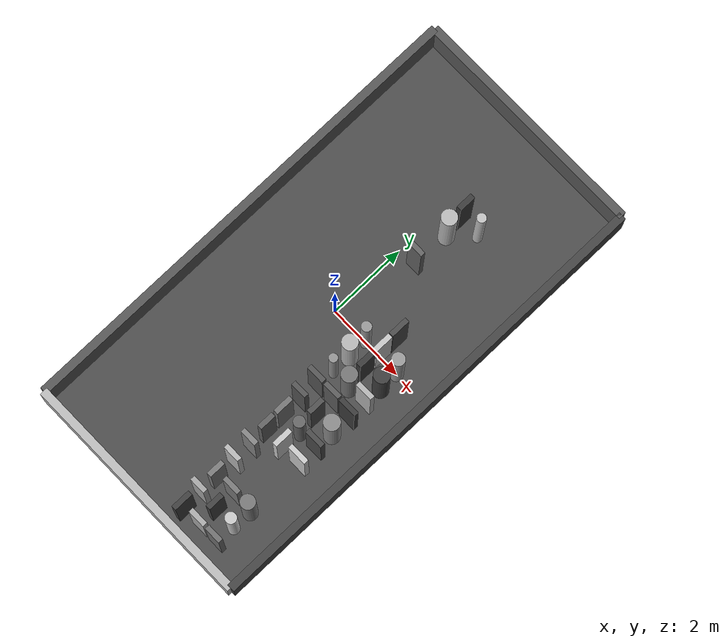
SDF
<sdf version="1.7">
 <world name="default">
  <model name="ground_plane">
   <static>true</static>
   <link name="link">
    <pose>0.0 0.0 -0.05 0 0 0</pose>
    <visual name="visual">
     <material>
      <ambient>0.3007133506330439 0.3007133506330439 0.3007133506330439 1</ambient>
      <diffuse>0.3007133506330439 0.3007133506330439 0.3007133506330439 1</diffuse>
     </material>
     <geometry><box><size>6.0 12.0 0.1</size></box></geometry>
    </visual>
    <collision name="collision">
     <geometry><box><size>6.0 12.0 0.1</size></box></geometry>
     <surface>
      <friction><ode><mu>100</mu><mu2>50.0</mu2><slip1>0.0</slip1><slip2>0.0</slip2></ode></friction>
      <contact><ode><kp>10000.0</kp><kd>100.0</kd></ode></contact>
     </surface>
    </collision>
   </link>
  </model>
  <model name="pn_wall_41">
   <static>true</static>
   <link name="link">
    <pose>0.5 2.0 1.0 0 0 0</pose>
    <visual name="visual">
     <material>
      <ambient>0.3944936342028039 0.3944936342028039 0.3944936342028039 1</ambient>
      <diffuse>0.3944936342028039 0.3944936342028039 0.3944936342028039 1</diffuse>
     </material>
     <geometry><box><size>0.40005718961279435 0.125 2.0</size></box></geometry>
    </visual>
    <collision name="collision">
     <geometry><box><size>0.40005718961279435 0.125 2.0</size></box></geometry>
     <surface>
      <friction><ode><mu>100</mu><mu2>50.0</mu2><slip1>0.0</slip1><slip2>0.0</slip2></ode></friction>
      <contact><ode><kp>10000.0</kp><kd>100.0</kd></ode></contact>
     </surface>
    </collision>
   </link>
  </model>
  <model name="pn_pillar_42">
   <static>true</static>
   <link name="link">
    <pose>0.5 3.0 1.0 0 0 0</pose>
    <visual name="visual">
     <material>
      <ambient>0.7272331266939107 0.7272331266939107 0.7272331266939107 1</ambient>
      <diffuse>0.7272331266939107 0.7272331266939107 0.7272331266939107 1</diffuse>
     </material>
     <geometry><cylinder><radius>0.19290986162646173</radius><length>2.0</length></cylinder></geometry>
    </visual>
    <collision name="collision">
     <geometry><cylinder><radius>0.19290986162646173</radius><length>2.0</length></cylinder></geometry>
     <surface>
      <friction><ode><mu>100</mu><mu2>50.0</mu2><slip1>0.0</slip1><slip2>0.0</slip2></ode></friction>
      <contact><ode><kp>10000.0</kp><kd>100.0</kd></ode></contact>
     </surface>
    </collision>
   </link>
  </model>
  <model name="pn_wall_43">
   <static>true</static>
   <link name="link">
    <pose>0.5 3.5 1.0 0 0 0</pose>
    <visual name="visual">
     <material>
      <ambient>0.23475509989651255 0.23475509989651255 0.23475509989651255 1</ambient>
      <diffuse>0.23475509989651255 0.23475509989651255 0.23475509989651255 1</diffuse>
     </material>
     <geometry><box><size>0.125 0.43075141254026617 2.0</size></box></geometry>
    </visual>
    <collision name="collision">
     <geometry><box><size>0.125 0.43075141254026617 2.0</size></box></geometry>
     <surface>
      <friction><ode><mu>100</mu><mu2>50.0</mu2><slip1>0.0</slip1><slip2>0.0</slip2></ode></friction>
      <contact><ode><kp>10000.0</kp><kd>100.0</kd></ode></contact>
     </surface>
    </collision>
   </link>
  </model>
  <model name="pn_wall_44">
   <static>true</static>
   <link name="link">
    <pose>1.0 -5.5 1.0 0 0 0</pose>
    <visual name="visual">
     <material>
      <ambient>0.25139207124072727 0.25139207124072727 0.25139207124072727 1</ambient>
      <diffuse>0.25139207124072727 0.25139207124072727 0.25139207124072727 1</diffuse>
     </material>
     <geometry><box><size>0.125 0.4946949445297994 2.0</size></box></geometry>
    </visual>
    <collision name="collision">
     <geometry><box><size>0.125 0.4946949445297994 2.0</size></box></geometry>
     <surface>
      <friction><ode><mu>100</mu><mu2>50.0</mu2><slip1>0.0</slip1><slip2>0.0</slip2></ode></friction>
      <contact><ode><kp>10000.0</kp><kd>100.0</kd></ode></contact>
     </surface>
    </collision>
   </link>
  </model>
  <model name="pn_wall_45">
   <static>true</static>
   <link name="link">
    <pose>1.0 -5.0 1.0 0 0 0</pose>
    <visual name="visual">
     <material>
      <ambient>0.656361299154339 0.656361299154339 0.656361299154339 1</ambient>
      <diffuse>0.656361299154339 0.656361299154339 0.656361299154339 1</diffuse>
     </material>
     <geometry><box><size>0.40692125184683836 0.125 2.0</size></box></geometry>
    </visual>
    <collision name="collision">
     <geometry><box><size>0.40692125184683836 0.125 2.0</size></box></geometry>
     <surface>
      <friction><ode><mu>100</mu><mu2>50.0</mu2><slip1>0.0</slip1><slip2>0.0</slip2></ode></friction>
      <contact><ode><kp>10000.0</kp><kd>100.0</kd></ode></contact>
     </surface>
    </collision>
   </link>
  </model>
  <model name="pn_wall_46">
   <static>true</static>
   <link name="link">
    <pose>1.0 -4.5 1.0 0 0 0</pose>
    <visual name="visual">
     <material>
      <ambient>0.48516942685923886 0.48516942685923886 0.48516942685923886 1</ambient>
      <diffuse>0.48516942685923886 0.48516942685923886 0.48516942685923886 1</diffuse>
     </material>
     <geometry><box><size>0.125 0.4128391464499763 2.0</size></box></geometry>
    </visual>
    <collision name="collision">
     <geometry><box><size>0.125 0.4128391464499763 2.0</size></box></geometry>
     <surface>
      <friction><ode><mu>100</mu><mu2>50.0</mu2><slip1>0.0</slip1><slip2>0.0</slip2></ode></friction>
      <contact><ode><kp>10000.0</kp><kd>100.0</kd></ode></contact>
     </surface>
    </collision>
   </link>
  </model>
  <model name="pn_wall_47">
   <static>true</static>
   <link name="link">
    <pose>1.0 -4.0 1.0 0 0 0</pose>
    <visual name="visual">
     <material>
      <ambient>0.7234598246511545 0.7234598246511545 0.7234598246511545 1</ambient>
      <diffuse>0.7234598246511545 0.7234598246511545 0.7234598246511545 1</diffuse>
     </material>
     <geometry><box><size>0.42650566289400593 0.125 2.0</size></box></geometry>
    </visual>
    <collision name="collision">
     <geometry><box><size>0.42650566289400593 0.125 2.0</size></box></geometry>
     <surface>
      <friction><ode><mu>100</mu><mu2>50.0</mu2><slip1>0.0</slip1><slip2>0.0</slip2></ode></friction>
      <contact><ode><kp>10000.0</kp><kd>100.0</kd></ode></contact>
     </surface>
    </collision>
   </link>
  </model>
  <model name="pn_wall_48">
   <static>true</static>
   <link name="link">
    <pose>1.0 -3.5 1.0 0 0 0</pose>
    <visual name="visual">
     <material>
      <ambient>0.523577653267675 0.523577653267675 0.523577653267675 1</ambient>
      <diffuse>0.523577653267675 0.523577653267675 0.523577653267675 1</diffuse>
     </material>
     <geometry><box><size>0.4211798205442082 0.125 2.0</size></box></geometry>
    </visual>
    <collision name="collision">
     <geometry><box><size>0.4211798205442082 0.125 2.0</size></box></geometry>
     <surface>
      <friction><ode><mu>100</mu><mu2>50.0</mu2><slip1>0.0</slip1><slip2>0.0</slip2></ode></friction>
      <contact><ode><kp>10000.0</kp><kd>100.0</kd></ode></contact>
     </surface>
    </collision>
   </link>
  </model>
  <model name="pn_wall_49">
   <static>true</static>
   <link name="link">
    <pose>1.0 -3.0 1.0 0 0 0</pose>
    <visual name="visual">
     <material>
      <ambient>0.387029774780537 0.387029774780537 0.387029774780537 1</ambient>
      <diffuse>0.387029774780537 0.387029774780537 0.387029774780537 1</diffuse>
     </material>
     <geometry><box><size>0.125 0.4201151063389696 2.0</size></box></geometry>
    </visual>
    <collision name="collision">
     <geometry><box><size>0.125 0.4201151063389696 2.0</size></box></geometry>
     <surface>
      <friction><ode><mu>100</mu><mu2>50.0</mu2><slip1>0.0</slip1><slip2>0.0</slip2></ode></friction>
      <contact><ode><kp>10000.0</kp><kd>100.0</kd></ode></contact>
     </surface>
    </collision>
   </link>
  </model>
  <model name="pn_wall_50">
   <static>true</static>
   <link name="link">
    <pose>1.0 -2.5 1.0 0 0 0</pose>
    <visual name="visual">
     <material>
      <ambient>0.4628600503487025 0.4628600503487025 0.4628600503487025 1</ambient>
      <diffuse>0.4628600503487025 0.4628600503487025 0.4628600503487025 1</diffuse>
     </material>
     <geometry><box><size>0.125 0.4649878057639454 2.0</size></box></geometry>
    </visual>
    <collision name="collision">
     <geometry><box><size>0.125 0.4649878057639454 2.0</size></box></geometry>
     <surface>
      <friction><ode><mu>100</mu><mu2>50.0</mu2><slip1>0.0</slip1><slip2>0.0</slip2></ode></friction>
      <contact><ode><kp>10000.0</kp><kd>100.0</kd></ode></contact>
     </surface>
    </collision>
   </link>
  </model>
  <model name="pn_wall_51">
   <static>true</static>
   <link name="link">
    <pose>1.0 -2.0 1.0 0 0 0</pose>
    <visual name="visual">
     <material>
      <ambient>0.33481840221893444 0.33481840221893444 0.33481840221893444 1</ambient>
      <diffuse>0.33481840221893444 0.33481840221893444 0.33481840221893444 1</diffuse>
     </material>
     <geometry><box><size>0.4121004195868266 0.125 2.0</size></box></geometry>
    </visual>
    <collision name="collision">
     <geometry><box><size>0.4121004195868266 0.125 2.0</size></box></geometry>
     <surface>
      <friction><ode><mu>100</mu><mu2>50.0</mu2><slip1>0.0</slip1><slip2>0.0</slip2></ode></friction>
      <contact><ode><kp>10000.0</kp><kd>100.0</kd></ode></contact>
     </surface>
    </collision>
   </link>
  </model>
  <model name="pn_wall_52">
   <static>true</static>
   <link name="link">
    <pose>1.0 -1.5 1.0 0 0 0</pose>
    <visual name="visual">
     <material>
      <ambient>0.3380688395579462 0.3380688395579462 0.3380688395579462 1</ambient>
      <diffuse>0.3380688395579462 0.3380688395579462 0.3380688395579462 1</diffuse>
     </material>
     <geometry><box><size>0.45883087184572335 0.125 2.0</size></box></geometry>
    </visual>
    <collision name="collision">
     <geometry><box><size>0.45883087184572335 0.125 2.0</size></box></geometry>
     <surface>
      <friction><ode><mu>100</mu><mu2>50.0</mu2><slip1>0.0</slip1><slip2>0.0</slip2></ode></friction>
      <contact><ode><kp>10000.0</kp><kd>100.0</kd></ode></contact>
     </surface>
    </collision>
   </link>
  </model>
  <model name="pn_pillar_53">
   <static>true</static>
   <link name="link">
    <pose>1.0 -1.0 1.0 0 0 0</pose>
    <visual name="visual">
     <material>
      <ambient>0.5786617743620595 0.5786617743620595 0.5786617743620595 1</ambient>
      <diffuse>0.5786617743620595 0.5786617743620595 0.5786617743620595 1</diffuse>
     </material>
     <geometry><cylinder><radius>0.10709930860090326</radius><length>2.0</length></cylinder></geometry>
    </visual>
    <collision name="collision">
     <geometry><cylinder><radius>0.10709930860090326</radius><length>2.0</length></cylinder></geometry>
     <surface>
      <friction><ode><mu>100</mu><mu2>50.0</mu2><slip1>0.0</slip1><slip2>0.0</slip2></ode></friction>
      <contact><ode><kp>10000.0</kp><kd>100.0</kd></ode></contact>
     </surface>
    </collision>
   </link>
  </model>
  <model name="pn_pillar_54">
   <static>true</static>
   <link name="link">
    <pose>1.0 -0.5 1.0 0 0 0</pose>
    <visual name="visual">
     <material>
      <ambient>0.7157812401522481 0.7157812401522481 0.7157812401522481 1</ambient>
      <diffuse>0.7157812401522481 0.7157812401522481 0.7157812401522481 1</diffuse>
     </material>
     <geometry><cylinder><radius>0.1905420013006128</radius><length>2.0</length></cylinder></geometry>
    </visual>
    <collision name="collision">
     <geometry><cylinder><radius>0.1905420013006128</radius><length>2.0</length></cylinder></geometry>
     <surface>
      <friction><ode><mu>100</mu><mu2>50.0</mu2><slip1>0.0</slip1><slip2>0.0</slip2></ode></friction>
      <contact><ode><kp>10000.0</kp><kd>100.0</kd></ode></contact>
     </surface>
    </collision>
   </link>
  </model>
  <model name="pn_pillar_55">
   <static>true</static>
   <link name="link">
    <pose>1.0 0.0 1.0 0 0 0</pose>
    <visual name="visual">
     <material>
      <ambient>0.6013866669777684 0.6013866669777684 0.6013866669777684 1</ambient>
      <diffuse>0.6013866669777684 0.6013866669777684 0.6013866669777684 1</diffuse>
     </material>
     <geometry><cylinder><radius>0.12380046343689953</radius><length>2.0</length></cylinder></geometry>
    </visual>
    <collision name="collision">
     <geometry><cylinder><radius>0.12380046343689953</radius><length>2.0</length></cylinder></geometry>
     <surface>
      <friction><ode><mu>100</mu><mu2>50.0</mu2><slip1>0.0</slip1><slip2>0.0</slip2></ode></friction>
      <contact><ode><kp>10000.0</kp><kd>100.0</kd></ode></contact>
     </surface>
    </collision>
   </link>
  </model>
  <model name="pn_pillar_56">
   <static>true</static>
   <link name="link">
    <pose>1.0 3.5 1.0 0 0 0</pose>
    <visual name="visual">
     <material>
      <ambient>0.7613085443484027 0.7613085443484027 0.7613085443484027 1</ambient>
      <diffuse>0.7613085443484027 0.7613085443484027 0.7613085443484027 1</diffuse>
     </material>
     <geometry><cylinder><radius>0.1132311848725025</radius><length>2.0</length></cylinder></geometry>
    </visual>
    <collision name="collision">
     <geometry><cylinder><radius>0.1132311848725025</radius><length>2.0</length></cylinder></geometry>
     <surface>
      <friction><ode><mu>100</mu><mu2>50.0</mu2><slip1>0.0</slip1><slip2>0.0</slip2></ode></friction>
      <contact><ode><kp>10000.0</kp><kd>100.0</kd></ode></contact>
     </surface>
    </collision>
   </link>
  </model>
  <model name="pn_wall_57">
   <static>true</static>
   <link name="link">
    <pose>1.5 -5.5 1.0 0 0 0</pose>
    <visual name="visual">
     <material>
      <ambient>0.6707716545744521 0.6707716545744521 0.6707716545744521 1</ambient>
      <diffuse>0.6707716545744521 0.6707716545744521 0.6707716545744521 1</diffuse>
     </material>
     <geometry><box><size>0.4472671026311794 0.125 2.0</size></box></geometry>
    </visual>
    <collision name="collision">
     <geometry><box><size>0.4472671026311794 0.125 2.0</size></box></geometry>
     <surface>
      <friction><ode><mu>100</mu><mu2>50.0</mu2><slip1>0.0</slip1><slip2>0.0</slip2></ode></friction>
      <contact><ode><kp>10000.0</kp><kd>100.0</kd></ode></contact>
     </surface>
    </collision>
   </link>
  </model>
  <model name="pn_wall_58">
   <static>true</static>
   <link name="link">
    <pose>1.5 -5.0 1.0 0 0 0</pose>
    <visual name="visual">
     <material>
      <ambient>0.258158488537294 0.258158488537294 0.258158488537294 1</ambient>
      <diffuse>0.258158488537294 0.258158488537294 0.258158488537294 1</diffuse>
     </material>
     <geometry><box><size>0.125 0.4190409914361878 2.0</size></box></geometry>
    </visual>
    <collision name="collision">
     <geometry><box><size>0.125 0.4190409914361878 2.0</size></box></geometry>
     <surface>
      <friction><ode><mu>100</mu><mu2>50.0</mu2><slip1>0.0</slip1><slip2>0.0</slip2></ode></friction>
      <contact><ode><kp>10000.0</kp><kd>100.0</kd></ode></contact>
     </surface>
    </collision>
   </link>
  </model>
  <model name="pn_wall_59">
   <static>true</static>
   <link name="link">
    <pose>1.5 -4.5 1.0 0 0 0</pose>
    <visual name="visual">
     <material>
      <ambient>0.480214800822005 0.480214800822005 0.480214800822005 1</ambient>
      <diffuse>0.480214800822005 0.480214800822005 0.480214800822005 1</diffuse>
     </material>
     <geometry><box><size>0.4423578623019921 0.125 2.0</size></box></geometry>
    </visual>
    <collision name="collision">
     <geometry><box><size>0.4423578623019921 0.125 2.0</size></box></geometry>
     <surface>
      <friction><ode><mu>100</mu><mu2>50.0</mu2><slip1>0.0</slip1><slip2>0.0</slip2></ode></friction>
      <contact><ode><kp>10000.0</kp><kd>100.0</kd></ode></contact>
     </surface>
    </collision>
   </link>
  </model>
  <model name="pn_wall_60">
   <static>true</static>
   <link name="link">
    <pose>1.5 -3.0 1.0 0 0 0</pose>
    <visual name="visual">
     <material>
      <ambient>0.7904991268195798 0.7904991268195798 0.7904991268195798 1</ambient>
      <diffuse>0.7904991268195798 0.7904991268195798 0.7904991268195798 1</diffuse>
     </material>
     <geometry><box><size>0.125 0.46733645472933016 2.0</size></box></geometry>
    </visual>
    <collision name="collision">
     <geometry><box><size>0.125 0.46733645472933016 2.0</size></box></geometry>
     <surface>
      <friction><ode><mu>100</mu><mu2>50.0</mu2><slip1>0.0</slip1><slip2>0.0</slip2></ode></friction>
      <contact><ode><kp>10000.0</kp><kd>100.0</kd></ode></contact>
     </surface>
    </collision>
   </link>
  </model>
  <model name="pn_pillar_61">
   <static>true</static>
   <link name="link">
    <pose>1.5 -2.5 1.0 0 0 0</pose>
    <visual name="visual">
     <material>
      <ambient>0.4035815632369779 0.4035815632369779 0.4035815632369779 1</ambient>
      <diffuse>0.4035815632369779 0.4035815632369779 0.4035815632369779 1</diffuse>
     </material>
     <geometry><cylinder><radius>0.14026212821022688</radius><length>2.0</length></cylinder></geometry>
    </visual>
    <collision name="collision">
     <geometry><cylinder><radius>0.14026212821022688</radius><length>2.0</length></cylinder></geometry>
     <surface>
      <friction><ode><mu>100</mu><mu2>50.0</mu2><slip1>0.0</slip1><slip2>0.0</slip2></ode></friction>
      <contact><ode><kp>10000.0</kp><kd>100.0</kd></ode></contact>
     </surface>
    </collision>
   </link>
  </model>
  <model name="pn_wall_62">
   <static>true</static>
   <link name="link">
    <pose>1.5 -2.0 1.0 0 0 0</pose>
    <visual name="visual">
     <material>
      <ambient>0.3141253450644869 0.3141253450644869 0.3141253450644869 1</ambient>
      <diffuse>0.3141253450644869 0.3141253450644869 0.3141253450644869 1</diffuse>
     </material>
     <geometry><box><size>0.125 0.4248656333920286 2.0</size></box></geometry>
    </visual>
    <collision name="collision">
     <geometry><box><size>0.125 0.4248656333920286 2.0</size></box></geometry>
     <surface>
      <friction><ode><mu>100</mu><mu2>50.0</mu2><slip1>0.0</slip1><slip2>0.0</slip2></ode></friction>
      <contact><ode><kp>10000.0</kp><kd>100.0</kd></ode></contact>
     </surface>
    </collision>
   </link>
  </model>
  <model name="pn_wall_63">
   <static>true</static>
   <link name="link">
    <pose>1.5 -1.5 1.0 0 0 0</pose>
    <visual name="visual">
     <material>
      <ambient>0.3671270868001643 0.3671270868001643 0.3671270868001643 1</ambient>
      <diffuse>0.3671270868001643 0.3671270868001643 0.3671270868001643 1</diffuse>
     </material>
     <geometry><box><size>0.4421881639834404 0.125 2.0</size></box></geometry>
    </visual>
    <collision name="collision">
     <geometry><box><size>0.4421881639834404 0.125 2.0</size></box></geometry>
     <surface>
      <friction><ode><mu>100</mu><mu2>50.0</mu2><slip1>0.0</slip1><slip2>0.0</slip2></ode></friction>
      <contact><ode><kp>10000.0</kp><kd>100.0</kd></ode></contact>
     </surface>
    </collision>
   </link>
  </model>
  <model name="pn_pillar_64">
   <static>true</static>
   <link name="link">
    <pose>1.5 -1.0 1.0 0 0 0</pose>
    <visual name="visual">
     <material>
      <ambient>0.4658784470320742 0.4658784470320742 0.4658784470320742 1</ambient>
      <diffuse>0.4658784470320742 0.4658784470320742 0.4658784470320742 1</diffuse>
     </material>
     <geometry><cylinder><radius>0.19232655992760128</radius><length>2.0</length></cylinder></geometry>
    </visual>
    <collision name="collision">
     <geometry><cylinder><radius>0.19232655992760128</radius><length>2.0</length></cylinder></geometry>
     <surface>
      <friction><ode><mu>100</mu><mu2>50.0</mu2><slip1>0.0</slip1><slip2>0.0</slip2></ode></friction>
      <contact><ode><kp>10000.0</kp><kd>100.0</kd></ode></contact>
     </surface>
    </collision>
   </link>
  </model>
  <model name="pn_wall_65">
   <static>true</static>
   <link name="link">
    <pose>1.5 -0.5 1.0 0 0 0</pose>
    <visual name="visual">
     <material>
      <ambient>0.23035299771492876 0.23035299771492876 0.23035299771492876 1</ambient>
      <diffuse>0.23035299771492876 0.23035299771492876 0.23035299771492876 1</diffuse>
     </material>
     <geometry><box><size>0.125 0.45503253124498483 2.0</size></box></geometry>
    </visual>
    <collision name="collision">
     <geometry><box><size>0.125 0.45503253124498483 2.0</size></box></geometry>
     <surface>
      <friction><ode><mu>100</mu><mu2>50.0</mu2><slip1>0.0</slip1><slip2>0.0</slip2></ode></friction>
      <contact><ode><kp>10000.0</kp><kd>100.0</kd></ode></contact>
     </surface>
    </collision>
   </link>
  </model>
  <model name="pn_wall_66">
   <static>true</static>
   <link name="link">
    <pose>1.5 0.0 1.0 0 0 0</pose>
    <visual name="visual">
     <material>
      <ambient>0.7813977543708508 0.7813977543708508 0.7813977543708508 1</ambient>
      <diffuse>0.7813977543708508 0.7813977543708508 0.7813977543708508 1</diffuse>
     </material>
     <geometry><box><size>0.125 0.48360275850799517 2.0</size></box></geometry>
    </visual>
    <collision name="collision">
     <geometry><box><size>0.125 0.48360275850799517 2.0</size></box></geometry>
     <surface>
      <friction><ode><mu>100</mu><mu2>50.0</mu2><slip1>0.0</slip1><slip2>0.0</slip2></ode></friction>
      <contact><ode><kp>10000.0</kp><kd>100.0</kd></ode></contact>
     </surface>
    </collision>
   </link>
  </model>
  <model name="pn_wall_67">
   <static>true</static>
   <link name="link">
    <pose>1.5 0.5 1.0 0 0 0</pose>
    <visual name="visual">
     <material>
      <ambient>0.2997866663623484 0.2997866663623484 0.2997866663623484 1</ambient>
      <diffuse>0.2997866663623484 0.2997866663623484 0.2997866663623484 1</diffuse>
     </material>
     <geometry><box><size>0.125 0.48486957344143056 2.0</size></box></geometry>
    </visual>
    <collision name="collision">
     <geometry><box><size>0.125 0.48486957344143056 2.0</size></box></geometry>
     <surface>
      <friction><ode><mu>100</mu><mu2>50.0</mu2><slip1>0.0</slip1><slip2>0.0</slip2></ode></friction>
      <contact><ode><kp>10000.0</kp><kd>100.0</kd></ode></contact>
     </surface>
    </collision>
   </link>
  </model>
  <model name="pn_wall_68">
   <static>true</static>
   <link name="link">
    <pose>2.0 -5.5 1.0 0 0 0</pose>
    <visual name="visual">
     <material>
      <ambient>0.4406241755296716 0.4406241755296716 0.4406241755296716 1</ambient>
      <diffuse>0.4406241755296716 0.4406241755296716 0.4406241755296716 1</diffuse>
     </material>
     <geometry><box><size>0.4213747299199182 0.125 2.0</size></box></geometry>
    </visual>
    <collision name="collision">
     <geometry><box><size>0.4213747299199182 0.125 2.0</size></box></geometry>
     <surface>
      <friction><ode><mu>100</mu><mu2>50.0</mu2><slip1>0.0</slip1><slip2>0.0</slip2></ode></friction>
      <contact><ode><kp>10000.0</kp><kd>100.0</kd></ode></contact>
     </surface>
    </collision>
   </link>
  </model>
  <model name="pn_pillar_69">
   <static>true</static>
   <link name="link">
    <pose>2.0 -5.0 1.0 0 0 0</pose>
    <visual name="visual">
     <material>
      <ambient>0.7911853062678356 0.7911853062678356 0.7911853062678356 1</ambient>
      <diffuse>0.7911853062678356 0.7911853062678356 0.7911853062678356 1</diffuse>
     </material>
     <geometry><cylinder><radius>0.1378973118976916</radius><length>2.0</length></cylinder></geometry>
    </visual>
    <collision name="collision">
     <geometry><cylinder><radius>0.1378973118976916</radius><length>2.0</length></cylinder></geometry>
     <surface>
      <friction><ode><mu>100</mu><mu2>50.0</mu2><slip1>0.0</slip1><slip2>0.0</slip2></ode></friction>
      <contact><ode><kp>10000.0</kp><kd>100.0</kd></ode></contact>
     </surface>
    </collision>
   </link>
  </model>
  <model name="pn_pillar_70">
   <static>true</static>
   <link name="link">
    <pose>2.0 -4.5 1.0 0 0 0</pose>
    <visual name="visual">
     <material>
      <ambient>0.473005020403486 0.473005020403486 0.473005020403486 1</ambient>
      <diffuse>0.473005020403486 0.473005020403486 0.473005020403486 1</diffuse>
     </material>
     <geometry><cylinder><radius>0.17840706019485694</radius><length>2.0</length></cylinder></geometry>
    </visual>
    <collision name="collision">
     <geometry><cylinder><radius>0.17840706019485694</radius><length>2.0</length></cylinder></geometry>
     <surface>
      <friction><ode><mu>100</mu><mu2>50.0</mu2><slip1>0.0</slip1><slip2>0.0</slip2></ode></friction>
      <contact><ode><kp>10000.0</kp><kd>100.0</kd></ode></contact>
     </surface>
    </collision>
   </link>
  </model>
  <model name="pn_wall_71">
   <static>true</static>
   <link name="link">
    <pose>2.0 -3.0 1.0 0 0 0</pose>
    <visual name="visual">
     <material>
      <ambient>0.7972536136956283 0.7972536136956283 0.7972536136956283 1</ambient>
      <diffuse>0.7972536136956283 0.7972536136956283 0.7972536136956283 1</diffuse>
     </material>
     <geometry><box><size>0.4957317640859673 0.125 2.0</size></box></geometry>
    </visual>
    <collision name="collision">
     <geometry><box><size>0.4957317640859673 0.125 2.0</size></box></geometry>
     <surface>
      <friction><ode><mu>100</mu><mu2>50.0</mu2><slip1>0.0</slip1><slip2>0.0</slip2></ode></friction>
      <contact><ode><kp>10000.0</kp><kd>100.0</kd></ode></contact>
     </surface>
    </collision>
   </link>
  </model>
  <model name="pn_wall_72">
   <static>true</static>
   <link name="link">
    <pose>2.0 -2.5 1.0 0 0 0</pose>
    <visual name="visual">
     <material>
      <ambient>0.2928780951644385 0.2928780951644385 0.2928780951644385 1</ambient>
      <diffuse>0.2928780951644385 0.2928780951644385 0.2928780951644385 1</diffuse>
     </material>
     <geometry><box><size>0.47184082752963263 0.125 2.0</size></box></geometry>
    </visual>
    <collision name="collision">
     <geometry><box><size>0.47184082752963263 0.125 2.0</size></box></geometry>
     <surface>
      <friction><ode><mu>100</mu><mu2>50.0</mu2><slip1>0.0</slip1><slip2>0.0</slip2></ode></friction>
      <contact><ode><kp>10000.0</kp><kd>100.0</kd></ode></contact>
     </surface>
    </collision>
   </link>
  </model>
  <model name="pn_pillar_73">
   <static>true</static>
   <link name="link">
    <pose>2.0 -2.0 1.0 0 0 0</pose>
    <visual name="visual">
     <material>
      <ambient>0.5475081744897539 0.5475081744897539 0.5475081744897539 1</ambient>
      <diffuse>0.5475081744897539 0.5475081744897539 0.5475081744897539 1</diffuse>
     </material>
     <geometry><cylinder><radius>0.1968709364969159</radius><length>2.0</length></cylinder></geometry>
    </visual>
    <collision name="collision">
     <geometry><cylinder><radius>0.1968709364969159</radius><length>2.0</length></cylinder></geometry>
     <surface>
      <friction><ode><mu>100</mu><mu2>50.0</mu2><slip1>0.0</slip1><slip2>0.0</slip2></ode></friction>
      <contact><ode><kp>10000.0</kp><kd>100.0</kd></ode></contact>
     </surface>
    </collision>
   </link>
  </model>
  <model name="pn_wall_74">
   <static>true</static>
   <link name="link">
    <pose>2.0 -1.5 1.0 0 0 0</pose>
    <visual name="visual">
     <material>
      <ambient>0.23429916374448986 0.23429916374448986 0.23429916374448986 1</ambient>
      <diffuse>0.23429916374448986 0.23429916374448986 0.23429916374448986 1</diffuse>
     </material>
     <geometry><box><size>0.4747975560379064 0.125 2.0</size></box></geometry>
    </visual>
    <collision name="collision">
     <geometry><box><size>0.4747975560379064 0.125 2.0</size></box></geometry>
     <surface>
      <friction><ode><mu>100</mu><mu2>50.0</mu2><slip1>0.0</slip1><slip2>0.0</slip2></ode></friction>
      <contact><ode><kp>10000.0</kp><kd>100.0</kd></ode></contact>
     </surface>
    </collision>
   </link>
  </model>
  <model name="pn_wall_75">
   <static>true</static>
   <link name="link">
    <pose>2.0 -1.0 1.0 0 0 0</pose>
    <visual name="visual">
     <material>
      <ambient>0.7116319352289713 0.7116319352289713 0.7116319352289713 1</ambient>
      <diffuse>0.7116319352289713 0.7116319352289713 0.7116319352289713 1</diffuse>
     </material>
     <geometry><box><size>0.4502850382919514 0.125 2.0</size></box></geometry>
    </visual>
    <collision name="collision">
     <geometry><box><size>0.4502850382919514 0.125 2.0</size></box></geometry>
     <surface>
      <friction><ode><mu>100</mu><mu2>50.0</mu2><slip1>0.0</slip1><slip2>0.0</slip2></ode></friction>
      <contact><ode><kp>10000.0</kp><kd>100.0</kd></ode></contact>
     </surface>
    </collision>
   </link>
  </model>
  <model name="pn_pillar_76">
   <static>true</static>
   <link name="link">
    <pose>2.0 -0.5 1.0 0 0 0</pose>
    <visual name="visual">
     <material>
      <ambient>0.24806687914435216 0.24806687914435216 0.24806687914435216 1</ambient>
      <diffuse>0.24806687914435216 0.24806687914435216 0.24806687914435216 1</diffuse>
     </material>
     <geometry><cylinder><radius>0.19607789032744505</radius><length>2.0</length></cylinder></geometry>
    </visual>
    <collision name="collision">
     <geometry><cylinder><radius>0.19607789032744505</radius><length>2.0</length></cylinder></geometry>
     <surface>
      <friction><ode><mu>100</mu><mu2>50.0</mu2><slip1>0.0</slip1><slip2>0.0</slip2></ode></friction>
      <contact><ode><kp>10000.0</kp><kd>100.0</kd></ode></contact>
     </surface>
    </collision>
   </link>
  </model>
  <model name="pn_pillar_77">
   <static>true</static>
   <link name="link">
    <pose>2.0 0.0 1.0 0 0 0</pose>
    <visual name="visual">
     <material>
      <ambient>0.6051275321624542 0.6051275321624542 0.6051275321624542 1</ambient>
      <diffuse>0.6051275321624542 0.6051275321624542 0.6051275321624542 1</diffuse>
     </material>
     <geometry><cylinder><radius>0.1595035106450028</radius><length>2.0</length></cylinder></geometry>
    </visual>
    <collision name="collision">
     <geometry><cylinder><radius>0.1595035106450028</radius><length>2.0</length></cylinder></geometry>
     <surface>
      <friction><ode><mu>100</mu><mu2>50.0</mu2><slip1>0.0</slip1><slip2>0.0</slip2></ode></friction>
      <contact><ode><kp>10000.0</kp><kd>100.0</kd></ode></contact>
     </surface>
    </collision>
   </link>
  </model>
  <model name="pn_wall_78">
   <static>true</static>
   <link name="link">
    <pose>-3.0 0.0 0.5 0 0 0</pose>
    <visual name="visual">
     <material>
      <ambient>0.3411223370005587 0.3411223370005587 0.3411223370005587 1</ambient>
      <diffuse>0.3411223370005587 0.3411223370005587 0.3411223370005587 1</diffuse>
     </material>
     <geometry><box><size>0.2 12.0 1.0</size></box></geometry>
    </visual>
    <collision name="collision">
     <geometry><box><size>0.2 12.0 1.0</size></box></geometry>
     <surface>
      <friction><ode><mu>100</mu><mu2>50.0</mu2><slip1>0.0</slip1><slip2>0.0</slip2></ode></friction>
      <contact><ode><kp>10000.0</kp><kd>100.0</kd></ode></contact>
     </surface>
    </collision>
   </link>
  </model>
  <model name="pn_wall_79">
   <static>true</static>
   <link name="link">
    <pose>3.0 0.0 0.5 0 0 0</pose>
    <visual name="visual">
     <material>
      <ambient>0.27193196836827455 0.27193196836827455 0.27193196836827455 1</ambient>
      <diffuse>0.27193196836827455 0.27193196836827455 0.27193196836827455 1</diffuse>
     </material>
     <geometry><box><size>0.2 12.0 1.0</size></box></geometry>
    </visual>
    <collision name="collision">
     <geometry><box><size>0.2 12.0 1.0</size></box></geometry>
     <surface>
      <friction><ode><mu>100</mu><mu2>50.0</mu2><slip1>0.0</slip1><slip2>0.0</slip2></ode></friction>
      <contact><ode><kp>10000.0</kp><kd>100.0</kd></ode></contact>
     </surface>
    </collision>
   </link>
  </model>
  <model name="pn_wall_80">
   <static>true</static>
   <link name="link">
    <pose>0.0 -6.0 0.5 0 0 0</pose>
    <visual name="visual">
     <material>
      <ambient>0.7341723884776625 0.7341723884776625 0.7341723884776625 1</ambient>
      <diffuse>0.7341723884776625 0.7341723884776625 0.7341723884776625 1</diffuse>
     </material>
     <geometry><box><size>6.0 0.2 1.0</size></box></geometry>
    </visual>
    <collision name="collision">
     <geometry><box><size>6.0 0.2 1.0</size></box></geometry>
     <surface>
      <friction><ode><mu>100</mu><mu2>50.0</mu2><slip1>0.0</slip1><slip2>0.0</slip2></ode></friction>
      <contact><ode><kp>10000.0</kp><kd>100.0</kd></ode></contact>
     </surface>
    </collision>
   </link>
  </model>
  <model name="pn_wall_81">
   <static>true</static>
   <link name="link">
    <pose>0.0 6.0 0.5 0 0 0</pose>
    <visual name="visual">
     <material>
      <ambient>0.3477292086731749 0.3477292086731749 0.3477292086731749 1</ambient>
      <diffuse>0.3477292086731749 0.3477292086731749 0.3477292086731749 1</diffuse>
     </material>
     <geometry><box><size>6.0 0.2 1.0</size></box></geometry>
    </visual>
    <collision name="collision">
     <geometry><box><size>6.0 0.2 1.0</size></box></geometry>
     <surface>
      <friction><ode><mu>100</mu><mu2>50.0</mu2><slip1>0.0</slip1><slip2>0.0</slip2></ode></friction>
      <contact><ode><kp>10000.0</kp><kd>100.0</kd></ode></contact>
     </surface>
    </collision>
   </link>
  </model>
 </world>
</sdf>
